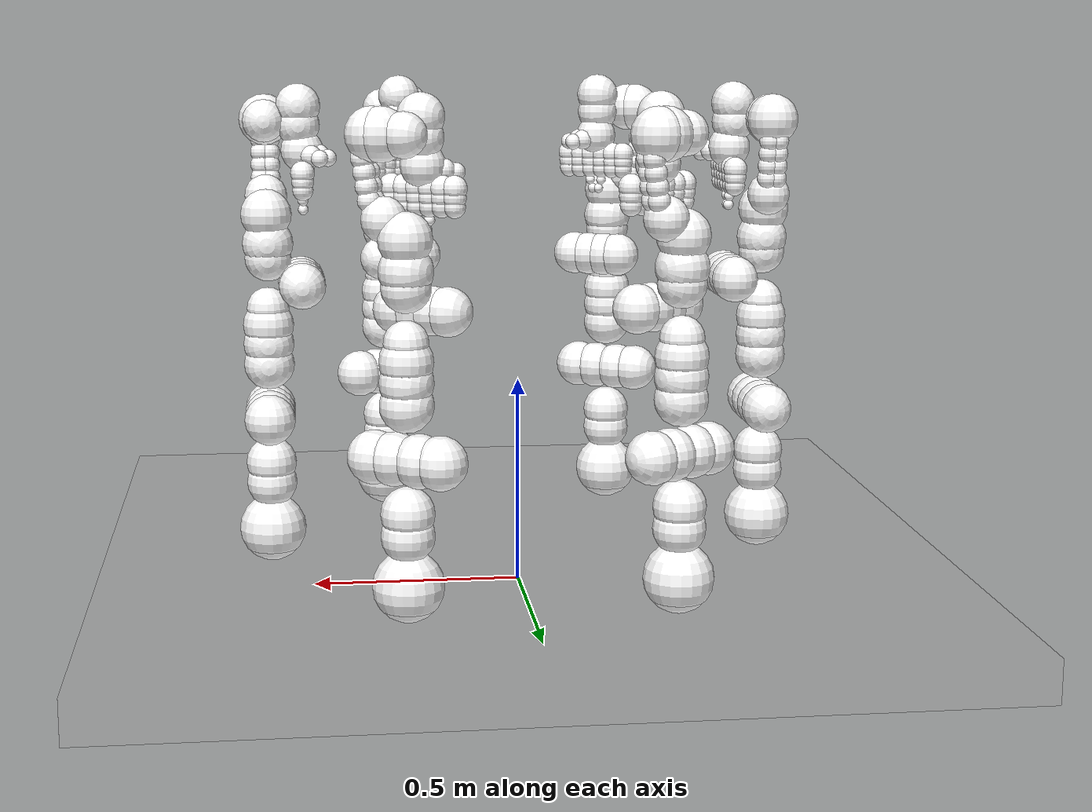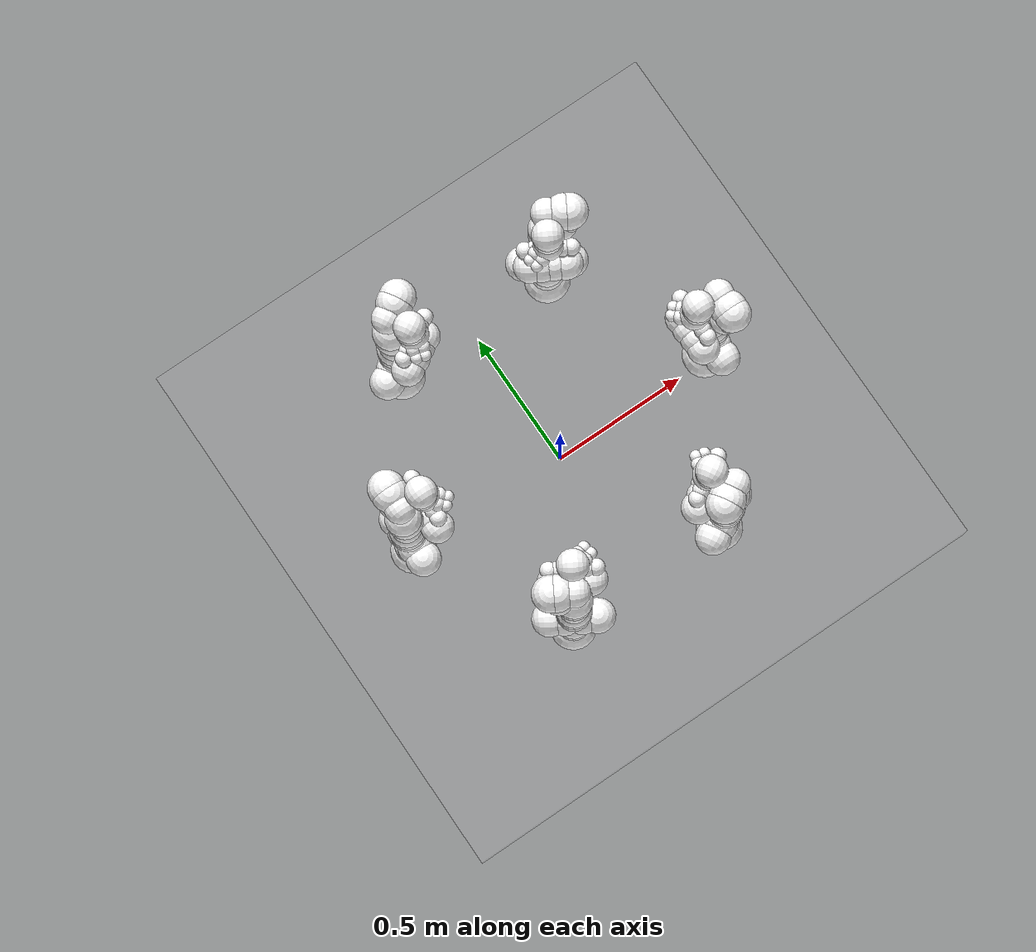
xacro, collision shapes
<?xml version="1.0" encoding="utf-8"?>
<robot xmlns:xacro="http://www.ros.org/wiki/xacro" name="panda">
  <xacro:arg name="arm_id_0" default="panda0" />
  <xacro:arg name="arm_id_1" default="panda1" />
  <xacro:arg name="arm_id_2" default="panda2" />
  <xacro:arg name="arm_id_3" default="panda3" />
  <xacro:arg name="arm_id_4" default="panda4" />
  <xacro:arg name="arm_id_5" default="panda5" />
  <xacro:arg name="arm_id_6" default="panda6" />
  <xacro:arg name="arm_id_7" default="panda7" />

  <xacro:include filename="$(find panda_spherized_description)/panda_spherized.urdf.xacro"/>

  <!-- box shaped table as base for the 2 Pandas -->
  <link name="base">
    <visual>
      <origin xyz="0 0 0.05" rpy="0 0 0"/>
      <geometry>
        <box size="2 2 0.1" />
      </geometry>
      <material name="Pastel Gray">
        <color rgba="0.7 0.7 0.7 0.2"/>
      </material>
    </visual>
    <collision>
      <origin xyz="0 0 0.05" rpy="0 0 0"/>
      <geometry>
        <box size="2 2 0.1" />
      </geometry>
    </collision>
  </link>

  <!-- Add a visual box. -->
  <link name="plank">
    <visual>
      <origin xyz="0 0 0.7" rpy="0 0 0"/>
      <geometry>
        <box size="0.2 0.6 0.02" />
      </geometry>
      <material name="Pastel Gray">
        <color rgba="0.7 0.7 0.7 0.2"/>
      </material>
    </visual>
  </link>

  <joint name="plank_joint" type="fixed">
    <parent link="base"/>
    <child link="plank"/>
    <origin xyz="0 0 0.0" rpy="0 0 0"/>
  </joint>

  <xacro:panda_arm_hand arm_id="$(arg arm_id_0)" connected_to="base" xyz="0.6 0.0 0.1" rpy="0 0 3.14"/>

  <xacro:panda_arm_hand arm_id="$(arg arm_id_1)" connected_to="base" xyz="0.3 0.52 0.1" rpy="0 0 4.19"/>

  <xacro:panda_arm_hand arm_id="$(arg arm_id_2)" connected_to="base" xyz="-0.3 0.52 0.1" rpy="0 0 5.24"/>

  <xacro:panda_arm_hand arm_id="$(arg arm_id_3)" connected_to="base" xyz="-0.6 0.0 0.1" rpy="0 0 6.28"/>

  <xacro:panda_arm_hand arm_id="$(arg arm_id_4)" connected_to="base" xyz="-0.3 -0.52 0.1" rpy="0 0 7.33"/>

  <xacro:panda_arm_hand arm_id="$(arg arm_id_5)" connected_to="base" xyz="0.3 -0.52 0.1" rpy="0 0 8.38"/>

</robot>

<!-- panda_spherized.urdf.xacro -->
<robot name="panda" xmlns:xacro="http://www.ros.org/wiki/xacro" path="assets/panda/panda.urdf">
	<xacro:macro name="panda_arm_hand" params="arm_id:='panda' description_pkg:='moveit_resources_panda_description' connected_to:='' xyz:='0 0 0' rpy:='0 0 0'">
	<xacro:unless value="${not connected_to}">
      <joint name="${arm_id}_joint_${connected_to}" type="fixed">
        <parent link="${connected_to}"/>
        <child link="${arm_id}_link0"/>
        <origin rpy="${rpy}" xyz="${xyz}"/>
      </joint>
    </xacro:unless>

	<link name="${arm_id}_link0">
		<inertial>
			<origin rpy="0 0 0" xyz="0 0 0.05"></origin>
			<mass value="2.9"></mass>
			<inertia ixx="0.1" ixy="0" ixz="0" iyy="0.1" iyz="0" izz="0.1"></inertia>
		</inertial>
		<visual>
			<geometry>
				<mesh filename="package://panda_spherized_description/meshes/collision/link0.obj"></mesh>
			</geometry>
			<material name="panda_white">
				<color rgba="1. 1. 1. 1."></color>
			</material>
		</visual>
		<collision>
			<geometry>
				<sphere radius="0.08"></sphere>
			</geometry>
			<origin xyz="0.0 0.0 0.05" rpy="0 0 0"></origin>
		</collision>
	</link>
	<link name="${arm_id}_link1">
		<inertial>
			<origin rpy="0 0 0" xyz="0 -0.04 -0.05"></origin>
			<mass value="2.7"></mass>
			<inertia ixx="0.1" ixy="0" ixz="0" iyy="0.1" iyz="0" izz="0.1"></inertia>
		</inertial>
		<visual>
			<geometry>
				<mesh filename="package://panda_spherized_description/meshes/visual/link1.obj"></mesh>
			</geometry>
			<material name="panda_white"></material>
		</visual>
		<collision>
			<geometry>
				<sphere radius="0.06"></sphere>
			</geometry>
			<origin xyz="0.0 -0.08 0.0" rpy="0 0 0"></origin>
		</collision>
		<collision>
			<geometry>
				<sphere radius="0.06"></sphere>
			</geometry>
			<origin xyz="0.0 -0.03 0.0" rpy="0 0 0"></origin>
		</collision>
		<collision>
			<geometry>
				<sphere radius="0.06"></sphere>
			</geometry>
			<origin xyz="0.0 0.0 -0.12" rpy="0 0 0"></origin>
		</collision>
		<collision>
			<geometry>
				<sphere radius="0.06"></sphere>
			</geometry>
			<origin xyz="0.0 0.0 -0.17" rpy="0 0 0"></origin>
		</collision>
	</link>
	<link name="${arm_id}_link2">
		<inertial>
			<origin rpy="0 0 0" xyz="0 -0.04 0.06"></origin>
			<mass value="2.73"></mass>
			<inertia ixx="0.1" ixy="0" ixz="0" iyy="0.1" iyz="0" izz="0.1"></inertia>
		</inertial>
		<visual>
			<geometry>
				<mesh filename="package://panda_spherized_description/meshes/visual/link2.obj"></mesh>
			</geometry>
			<material name="panda_white"></material>
		</visual>
		<collision>
			<geometry>
				<sphere radius="0.06"></sphere>
			</geometry>
			<origin xyz="0.0 0.0 0.03" rpy="0 0 0"></origin>
		</collision>
		<collision>
			<geometry>
				<sphere radius="0.06"></sphere>
			</geometry>
			<origin xyz="0.0 0.0 0.08" rpy="0 0 0"></origin>
		</collision>
		<collision>
			<geometry>
				<sphere radius="0.06"></sphere>
			</geometry>
			<origin xyz="0.0 -0.12 0.0" rpy="0 0 0"></origin>
		</collision>
		<collision>
			<geometry>
				<sphere radius="0.06"></sphere>
			</geometry>
			<origin xyz="0.0 -0.17 0.0" rpy="0 0 0"></origin>
		</collision>
	</link>
	<link name="${arm_id}_link3">
		<inertial>
			<origin rpy="0 0 0" xyz="0.01 0.01 -0.05"></origin>
			<mass value="2.04"></mass>
			<inertia ixx="0.1" ixy="0" ixz="0" iyy="0.1" iyz="0" izz="0.1"></inertia>
		</inertial>
		<visual>
			<geometry>
				<mesh filename="package://panda_spherized_description/meshes/visual/link3.obj"></mesh>
			</geometry>
			<material name="panda_red">
				<color rgba="1. 1. 1. 1."></color>
			</material>
		</visual>
		<collision>
			<geometry>
				<sphere radius="0.06"></sphere>
			</geometry>
			<origin xyz="0.0 0.0 -0.1" rpy="0 0 0"></origin>
		</collision>
		<collision>
			<geometry>
				<sphere radius="0.05"></sphere>
			</geometry>
			<origin xyz="0.0 0.0 -0.06" rpy="0 0 0"></origin>
		</collision>
		<collision>
			<geometry>
				<sphere radius="0.055"></sphere>
			</geometry>
			<origin xyz="0.08 0.06 0.0" rpy="0 0 0"></origin>
		</collision>
		<collision>
			<geometry>
				<sphere radius="0.055"></sphere>
			</geometry>
			<origin xyz="0.08 0.02 0.0" rpy="0 0 0"></origin>
		</collision>
	</link>
	<link name="${arm_id}_link4">
		<inertial>
			<origin rpy="0 0 0" xyz="-0.03 0.03 0.02"></origin>
			<mass value="2.08"></mass>
			<inertia ixx="0.1" ixy="0" ixz="0" iyy="0.1" iyz="0" izz="0.1"></inertia>
		</inertial>
		<visual>
			<geometry>
				<mesh filename="package://panda_spherized_description/meshes/visual/link4.obj"></mesh>
			</geometry>
			<material name="panda_white"></material>
		</visual>
		<collision>
			<geometry>
				<sphere radius="0.06"></sphere>
			</geometry>
			<origin xyz="-0.08 0.095 0.0" rpy="0 0 0"></origin>
		</collision>
		<collision>
			<geometry>
				<sphere radius="0.055"></sphere>
			</geometry>
			<origin xyz="0.0 0.0 0.02" rpy="0 0 0"></origin>
		</collision>
		<collision>
			<geometry>
				<sphere radius="0.055"></sphere>
			</geometry>
			<origin xyz="0.0 0.0 0.06" rpy="0 0 0"></origin>
		</collision>
		<collision>
			<geometry>
				<sphere radius="0.055"></sphere>
			</geometry>
			<origin xyz="-0.08 0.06 0.0" rpy="0 0 0"></origin>
		</collision>
	</link>
	<link name="${arm_id}_link5">
		<inertial>
			<origin rpy="0 0 0" xyz="0 0.04 -0.12"></origin>
			<mass value="3"></mass>
			<inertia ixx="0.1" ixy="0" ixz="0" iyy="0.1" iyz="0" izz="0.1"></inertia>
		</inertial>
		<visual>
			<geometry>
				<mesh filename="package://panda_spherized_description/meshes/visual/link5.obj"></mesh>
			</geometry>
			<material name="panda_white"></material>
		</visual>
		<collision>
			<geometry>
				<sphere radius="0.06"></sphere>
			</geometry>
			<origin xyz="0.0 0.055 0.0" rpy="0 0 0"></origin>
		</collision>
		<collision>
			<geometry>
				<sphere radius="0.06"></sphere>
			</geometry>
			<origin xyz="0.0 0.075 0.0" rpy="0 0 0"></origin>
		</collision>
		<collision>
			<geometry>
				<sphere radius="0.06"></sphere>
			</geometry>
			<origin xyz="0.0 0.0 -0.22" rpy="0 0 0"></origin>
		</collision>
		<collision>
			<geometry>
				<sphere radius="0.05"></sphere>
			</geometry>
			<origin xyz="0.0 0.05 -0.18" rpy="0 0 0"></origin>
		</collision>
		<collision>
			<geometry>
				<sphere radius="0.025"></sphere>
			</geometry>
			<origin xyz="0.01 0.08 -0.14" rpy="0 0 0"></origin>
		</collision>
		<collision>
			<geometry>
				<sphere radius="0.025"></sphere>
			</geometry>
			<origin xyz="0.01 0.085 -0.11" rpy="0 0 0"></origin>
		</collision>
		<collision>
			<geometry>
				<sphere radius="0.025"></sphere>
			</geometry>
			<origin xyz="0.01 0.09 -0.08" rpy="0 0 0"></origin>
		</collision>
		<collision>
			<geometry>
				<sphere radius="0.025"></sphere>
			</geometry>
			<origin xyz="0.01 0.095 -0.05" rpy="0 0 0"></origin>
		</collision>
		<collision>
			<geometry>
				<sphere radius="0.025"></sphere>
			</geometry>
			<origin xyz="-0.01 0.08 -0.14" rpy="0 0 0"></origin>
		</collision>
		<collision>
			<geometry>
				<sphere radius="0.025"></sphere>
			</geometry>
			<origin xyz="-0.01 0.085 -0.11" rpy="0 0 0"></origin>
		</collision>
		<collision>
			<geometry>
				<sphere radius="0.025"></sphere>
			</geometry>
			<origin xyz="-0.01 0.09 -0.08" rpy="0 0 0"></origin>
		</collision>
		<collision>
			<geometry>
				<sphere radius="0.025"></sphere>
			</geometry>
			<origin xyz="-0.01 0.095 -0.05" rpy="0 0 0"></origin>
		</collision>
	</link>
	<link name="${arm_id}_link6">
		<inertial>
			<origin rpy="0 0 0" xyz="0.04 0 0"></origin>
			<mass value="1.3"></mass>
			<inertia ixx="0.1" ixy="0" ixz="0" iyy="0.1" iyz="0" izz="0.1"></inertia>
		</inertial>
		<visual>
			<geometry>
				<mesh filename="package://panda_spherized_description/meshes/visual/link6.obj"></mesh>
			</geometry>
			<material name="panda_white"></material>
		</visual>
		<collision>
			<geometry>
				<sphere radius="0.05"></sphere>
			</geometry>
			<origin xyz="0.0 0.0 0.0" rpy="0 0 0"></origin>
		</collision>
		<collision>
			<geometry>
				<sphere radius="0.05"></sphere>
			</geometry>
			<origin xyz="0.08 -0.01 0.0" rpy="0 0 0"></origin>
		</collision>
		<collision>
			<geometry>
				<sphere radius="0.052"></sphere>
			</geometry>
			<origin xyz="0.08 0.035 0.0" rpy="0 0 0"></origin>
		</collision>
	</link>
	<link name="${arm_id}_link7">
		<inertial>
			<origin rpy="0 0 0" xyz="0 0 0.08"></origin>
			<mass value=".2"></mass>
			<inertia ixx="0.1" ixy="0" ixz="0" iyy="0.1" iyz="0" izz="0.1"></inertia>
		</inertial>
		<visual>
			<geometry>
				<mesh filename="package://panda_spherized_description/meshes/collision/link7.obj"></mesh>
			</geometry>
			<material name="panda_white"></material>
		</visual>
		<collision>
			<geometry>
				<sphere radius="0.05"></sphere>
			</geometry>
			<origin xyz="0.0 0.0 0.07" rpy="0 0 0"></origin>
		</collision>
		<collision>
			<geometry>
				<sphere radius="0.025"></sphere>
			</geometry>
			<origin xyz="0.02 0.04 0.08" rpy="0 0 0"></origin>
		</collision>
		<collision>
			<geometry>
				<sphere radius="0.025"></sphere>
			</geometry>
			<origin xyz="0.04 0.02 0.08" rpy="0 0 0"></origin>
		</collision>
		<collision>
			<geometry>
				<sphere radius="0.02"></sphere>
			</geometry>
			<origin xyz="0.04 0.06 0.085" rpy="0 0 0"></origin>
		</collision>
		<collision>
			<geometry>
				<sphere radius="0.02"></sphere>
			</geometry>
			<origin xyz="0.06 0.04 0.085" rpy="0 0 0"></origin>
		</collision>
	</link>
	<link name="${arm_id}_link8">
		<inertial>
			<origin rpy="0 0 0" xyz="0 0 0"></origin>
			<mass value="0.0"></mass>
			<inertia ixx="0.1" ixy="0" ixz="0" iyy="0.1" iyz="0" izz="0.1"></inertia>
		</inertial>
	</link>
	<link name="${arm_id}_hand">
		<inertial>
			<origin rpy="0 0 0" xyz="0 0 0.04"></origin>
			<mass value=".81"></mass>
			<inertia ixx="0.1" ixy="0" ixz="0" iyy="0.1" iyz="0" izz="0.1"></inertia>
		</inertial>
		<visual>
			<geometry>
				<mesh filename="package://panda_spherized_description/meshes/visual/hand.obj"></mesh>
			</geometry>
			<material name="panda_white"></material>
		</visual>
		<collision>
			<geometry>
				<sphere radius="0.028"></sphere>
			</geometry>
			<origin xyz="0.0 -0.075 0.01" rpy="0 0 0"></origin>
		</collision>
		<collision>
			<geometry>
				<sphere radius="0.028"></sphere>
			</geometry>
			<origin xyz="0.0 -0.045 0.01" rpy="0 0 0"></origin>
		</collision>
		<collision>
			<geometry>
				<sphere radius="0.028"></sphere>
			</geometry>
			<origin xyz="0.0 -0.015 0.01" rpy="0 0 0"></origin>
		</collision>
		<collision>
			<geometry>
				<sphere radius="0.028"></sphere>
			</geometry>
			<origin xyz="0.0 0.015 0.01" rpy="0 0 0"></origin>
		</collision>
		<collision>
			<geometry>
				<sphere radius="0.028"></sphere>
			</geometry>
			<origin xyz="0.0 0.045 0.01" rpy="0 0 0"></origin>
		</collision>
		<collision>
			<geometry>
				<sphere radius="0.028"></sphere>
			</geometry>
			<origin xyz="0.0 0.075 0.01" rpy="0 0 0"></origin>
		</collision>
		<collision>
			<geometry>
				<sphere radius="0.026"></sphere>
			</geometry>
			<origin xyz="0.0 -0.075 0.03" rpy="0 0 0"></origin>
		</collision>
		<collision>
			<geometry>
				<sphere radius="0.026"></sphere>
			</geometry>
			<origin xyz="0.0 -0.045 0.03" rpy="0 0 0"></origin>
		</collision>
		<collision>
			<geometry>
				<sphere radius="0.026"></sphere>
			</geometry>
			<origin xyz="0.0 -0.015 0.03" rpy="0 0 0"></origin>
		</collision>
		<collision>
			<geometry>
				<sphere radius="0.026"></sphere>
			</geometry>
			<origin xyz="0.0 0.015 0.03" rpy="0 0 0"></origin>
		</collision>
		<collision>
			<geometry>
				<sphere radius="0.026"></sphere>
			</geometry>
			<origin xyz="0.0 0.045 0.03" rpy="0 0 0"></origin>
		</collision>
		<collision>
			<geometry>
				<sphere radius="0.026"></sphere>
			</geometry>
			<origin xyz="0.0 0.075 0.03" rpy="0 0 0"></origin>
		</collision>
		<collision>
			<geometry>
				<sphere radius="0.024"></sphere>
			</geometry>
			<origin xyz="0.0 -0.075 0.05" rpy="0 0 0"></origin>
		</collision>
		<collision>
			<geometry>
				<sphere radius="0.024"></sphere>
			</geometry>
			<origin xyz="0.0 -0.045 0.05" rpy="0 0 0"></origin>
		</collision>
		<collision>
			<geometry>
				<sphere radius="0.024"></sphere>
			</geometry>
			<origin xyz="0.0 -0.015 0.05" rpy="0 0 0"></origin>
		</collision>
		<collision>
			<geometry>
				<sphere radius="0.024"></sphere>
			</geometry>
			<origin xyz="0.0 0.015 0.05" rpy="0 0 0"></origin>
		</collision>
		<collision>
			<geometry>
				<sphere radius="0.024"></sphere>
			</geometry>
			<origin xyz="0.0 0.045 0.05" rpy="0 0 0"></origin>
		</collision>
		<collision>
			<geometry>
				<sphere radius="0.024"></sphere>
			</geometry>
			<origin xyz="0.0 0.075 0.05" rpy="0 0 0"></origin>
		</collision>
	</link>
	<link name="${arm_id}_leftfinger">
		<contact>
			<friction_anchor></friction_anchor>
			<stiffness value="30000.0"></stiffness>
			<damping value="1000.0"></damping>
			<spinning_friction value="0.1"></spinning_friction>
			<lateral_friction value="1.0"></lateral_friction>
		</contact>
		<inertial>
			<origin rpy="0 0 0" xyz="0 0.01 0.02"></origin>
			<mass value="0.1"></mass>
			<inertia ixx="0.1" ixy="0" ixz="0" iyy="0.1" iyz="0" izz="0.1"></inertia>
		</inertial>
		<visual>
			<geometry>
				<mesh filename="package://panda_spherized_description/meshes/visual/finger.obj"></mesh>
			</geometry>
			<material name="panda_white"></material>
		</visual>
		<collision>
			<geometry>
				<sphere radius="0.012"></sphere>
			</geometry>
			<origin xyz="0.0 0.015 0.022" rpy="0 0 0"></origin>
		</collision>
		<collision>
			<geometry>
				<sphere radius="0.012"></sphere>
			</geometry>
			<origin xyz="0.0 0.008 0.044" rpy="0 0 0"></origin>
		</collision>
	</link>
	<link name="${arm_id}_rightfinger">
		<contact>
			<friction_anchor></friction_anchor>
			<stiffness value="30000.0"></stiffness>
			<damping value="1000.0"></damping>
			<spinning_friction value="0.1"></spinning_friction>
			<lateral_friction value="1.0"></lateral_friction>
		</contact>
		<inertial>
			<origin rpy="0 0 0" xyz="0 -0.01 0.02"></origin>
			<mass value="0.1"></mass>
			<inertia ixx="0.1" ixy="0" ixz="0" iyy="0.1" iyz="0" izz="0.1"></inertia>
		</inertial>
		<visual>
			<origin rpy="0 0 3.14159265359" xyz="0 0 0"></origin>
			<geometry>
				<mesh filename="package://panda_spherized_description/meshes/visual/finger.obj"></mesh>
			</geometry>
			<material name="panda_white"></material>
		</visual>
		<collision>
			<geometry>
				<sphere radius="0.012"></sphere>
			</geometry>
			<origin xyz="0.0 -0.015 0.022" rpy="0 0 0"></origin>
		</collision>
		<collision>
			<geometry>
				<sphere radius="0.012"></sphere>
			</geometry>
			<origin xyz="0.0 -0.008 0.044" rpy="0 0 0"></origin>
		</collision>
	</link>
	<link name="${arm_id}_grasptarget">
		<inertial>
			<origin rpy="0 0 0" xyz="0 0 0"></origin>
			<mass value="0.0"></mass>
			<inertia ixx="0.1" ixy="0" ixz="0" iyy="0.1" iyz="0" izz="0.1"></inertia>
		</inertial>
	</link>
	<joint name="${arm_id}_joint1" type="revolute">
		<safety_controller k_position="100.0" k_velocity="40.0" soft_lower_limit="-2.8973" soft_upper_limit="2.8973"></safety_controller>
		<origin rpy="0 0 0" xyz="0 0 0.333"></origin>
		<parent link="${arm_id}_link0"></parent>
		<child link="${arm_id}_link1"></child>
		<axis xyz="0 0 1"></axis>
		<limit effort="87" lower="-2.9671" upper="2.9671" velocity="2.3925"></limit>
	</joint>
	<joint name="${arm_id}_joint2" type="revolute">
		<safety_controller k_position="100.0" k_velocity="40.0" soft_lower_limit="-1.7628" soft_upper_limit="1.7628"></safety_controller>
		<origin rpy="-1.57079632679 0 0" xyz="0 0 0"></origin>
		<parent link="${arm_id}_link1"></parent>
		<child link="${arm_id}_link2"></child>
		<axis xyz="0 0 1"></axis>
		<limit effort="87" lower="-1.8326" upper="1.8326" velocity="2.3925"></limit>
	</joint>
	<joint name="${arm_id}_joint3" type="revolute">
		<safety_controller k_position="100.0" k_velocity="40.0" soft_lower_limit="-2.8973" soft_upper_limit="2.8973"></safety_controller>
		<origin rpy="1.57079632679 0 0" xyz="0 -0.316 0"></origin>
		<parent link="${arm_id}_link2"></parent>
		<child link="${arm_id}_link3"></child>
		<axis xyz="0 0 1"></axis>
		<limit effort="87" lower="-2.9671" upper="2.9671" velocity="2.3925"></limit>
	</joint>
	<joint name="${arm_id}_joint4" type="revolute">
		<safety_controller k_position="100.0" k_velocity="40.0" soft_lower_limit="-3.0718" soft_upper_limit="-0.0698"></safety_controller>
		<origin rpy="1.57079632679 0 0" xyz="0.0825 0 0"></origin>
		<parent link="${arm_id}_link3"></parent>
		<child link="${arm_id}_link4"></child>
		<axis xyz="0 0 1"></axis>
		<limit effort="87" lower="-3.1416" upper="0.0873" velocity="2.3925"></limit>
	</joint>
	<joint name="${arm_id}_joint5" type="revolute">
		<safety_controller k_position="100.0" k_velocity="40.0" soft_lower_limit="-2.8973" soft_upper_limit="2.8973"></safety_controller>
		<origin rpy="-1.57079632679 0 0" xyz="-0.0825 0.384 0"></origin>
		<parent link="${arm_id}_link4"></parent>
		<child link="${arm_id}_link5"></child>
		<axis xyz="0 0 1"></axis>
		<limit effort="12" lower="-2.9671" upper="2.9671" velocity="2.8710"></limit>
	</joint>
	<joint name="${arm_id}_joint6" type="revolute">
		<safety_controller k_position="100.0" k_velocity="40.0" soft_lower_limit="-0.0175" soft_upper_limit="3.7525"></safety_controller>
		<origin rpy="1.57079632679 0 0" xyz="0 0 0"></origin>
		<parent link="${arm_id}_link5"></parent>
		<child link="${arm_id}_link6"></child>
		<axis xyz="0 0 1"></axis>
		<limit effort="12" lower="-0.0873" upper="3.8223" velocity="2.8710"></limit>
	</joint>
	<joint name="${arm_id}_joint7" type="revolute">
		<safety_controller k_position="100.0" k_velocity="40.0" soft_lower_limit="-2.8973" soft_upper_limit="2.8973"></safety_controller>
		<origin rpy="1.57079632679 0 0" xyz="0.088 0 0"></origin>
		<parent link="${arm_id}_link6"></parent>
		<child link="${arm_id}_link7"></child>
		<axis xyz="0 0 1"></axis>
		<limit effort="12" lower="-2.9671" upper="2.9671" velocity="2.8710"></limit>
	</joint>
	<joint name="${arm_id}_joint8" type="fixed">
		<origin rpy="0 0 0" xyz="0 0 0.107"></origin>
		<parent link="${arm_id}_link7"></parent>
		<child link="${arm_id}_link8"></child>
		<axis xyz="0 0 0"></axis>
	</joint>
	<joint name="${arm_id}_hand_joint" type="fixed">
		<parent link="${arm_id}_link8"></parent>
		<child link="${arm_id}_hand"></child>
		<origin rpy="0 0 0" xyz="0 0 0"></origin>
	</joint>
	<joint name="${arm_id}_finger_joint1" type="fixed">
		<parent link="${arm_id}_hand"></parent>
		<child link="${arm_id}_leftfinger"></child>
		<origin rpy="0 0 0" xyz="0 0.0 0.0584"></origin>
		<axis xyz="0 1 0"></axis>
	</joint>
	<joint name="${arm_id}_finger_joint2" type="fixed">
		<parent link="${arm_id}_hand"></parent>
		<child link="${arm_id}_rightfinger"></child>
		<origin rpy="0 0 0" xyz="0 0.0 0.0584"></origin>
		<axis xyz="0 -1 0"></axis>
		<mimic joint="${arm_id}_finger_joint1"></mimic>
	</joint>
	<joint name="${arm_id}_grasptarget_hand" type="fixed">
		<parent link="${arm_id}_hand"></parent>
		<child link="${arm_id}_grasptarget"></child>
		<origin rpy="0 0 0" xyz="0 0 0.105"></origin>
	</joint>
	</xacro:macro>
</robot>
